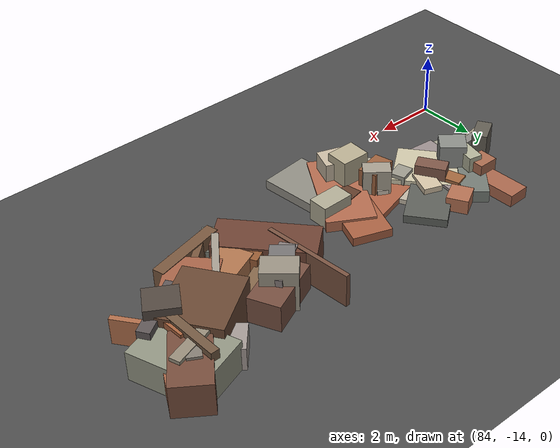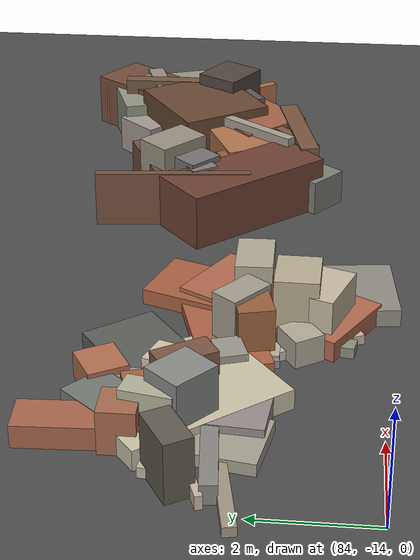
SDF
<sdf version="1.6">
 <world name="navitas_arena">
  <model name="ground_plane">
   <static>true</static>
   <link name="link">
    <collision name="collision">
     <geometry><plane><normal>0 0 1</normal><size>400 400</size></plane></geometry>
     <surface><friction><ode><mu>0.800</mu><mu2>0.800</mu2></ode></friction></surface>
    </collision>
    <visual name="visual">
     <cast_shadows>false</cast_shadows>
     <geometry><plane><normal>0 0 1</normal><size>400 400</size></plane></geometry>
     <material>
      <specular>0.04 0.04 0.04 1</specular>
      <script>
       <uri>file://media/materials/scripts/navitas_asphalt.material</uri>
       <name>Navitas/RealArenaAsphalt</name>
      </script>
     </material>
    </visual>
   </link>
  </model>
  <model name="blk_zor_2_0_0">
   <static>true</static>
   <pose>93.799 -10.117 0.000 0 0 0</pose>
   <link name="link">
    <collision name="col_0">
     <pose>-0.468 -1.114 0.536 0.000 0.000 2.289</pose>
     <geometry><box><size>3.077 1.252 1.072</size></box></geometry>
    </collision>
    <visual name="vis_0">
     <pose>-0.468 -1.114 0.536 0.000 0.000 2.289</pose>
     <geometry><box><size>3.077 1.252 1.072</size></box></geometry>
     <material>
      <ambient>0.40 0.24 0.18 1</ambient>
      <diffuse>0.43 0.26 0.20 1</diffuse>
      <specular>0.05 0.05 0.045 1</specular>
     </material>
    </visual>
    <collision name="col_1">
     <pose>0.269 0.342 0.671 0.000 0.000 2.404</pose>
     <geometry><box><size>1.095 0.757 1.342</size></box></geometry>
    </collision>
    <visual name="vis_1">
     <pose>0.269 0.342 0.671 0.000 0.000 2.404</pose>
     <geometry><box><size>1.095 0.757 1.342</size></box></geometry>
     <material>
      <ambient>0.56 0.53 0.47 1</ambient>
      <diffuse>0.60 0.57 0.51 1</diffuse>
      <specular>0.05 0.05 0.045 1</specular>
     </material>
    </visual>
    <collision name="col_2">
     <pose>-0.869 0.211 0.547 0.000 0.000 1.664</pose>
     <geometry><box><size>3.019 0.146 1.093</size></box></geometry>
    </collision>
    <visual name="vis_2">
     <pose>-0.869 0.211 0.547 0.000 0.000 1.664</pose>
     <geometry><box><size>3.019 0.146 1.093</size></box></geometry>
     <material>
      <ambient>0.44 0.30 0.23 1</ambient>
      <diffuse>0.47 0.32 0.25 1</diffuse>
      <specular>0.05 0.05 0.045 1</specular>
     </material>
    </visual>
    <collision name="col_3">
     <pose>-0.280 -0.207 0.594 0.000 0.000 2.407</pose>
     <geometry><box><size>0.731 0.542 1.188</size></box></geometry>
    </collision>
    <visual name="vis_3">
     <pose>-0.280 -0.207 0.594 0.000 0.000 2.407</pose>
     <geometry><box><size>0.731 0.542 1.188</size></box></geometry>
     <material>
      <ambient>0.43 0.42 0.41 1</ambient>
      <diffuse>0.46 0.45 0.45 1</diffuse>
      <specular>0.05 0.05 0.045 1</specular>
     </material>
    </visual>
    <collision name="col_4">
     <pose>0.378 0.428 0.440 0.000 0.000 3.579</pose>
     <geometry><box><size>1.924 1.025 0.880</size></box></geometry>
    </collision>
    <visual name="vis_4">
     <pose>0.378 0.428 0.440 0.000 0.000 3.579</pose>
     <geometry><box><size>1.924 1.025 0.880</size></box></geometry>
     <material>
      <ambient>0.43 0.29 0.23 1</ambient>
      <diffuse>0.46 0.31 0.25 1</diffuse>
      <specular>0.05 0.05 0.045 1</specular>
     </material>
    </visual>
    <collision name="col_5">
     <pose>0.684 -0.132 0.385 0.000 0.000 3.644</pose>
     <geometry><box><size>1.405 0.565 0.771</size></box></geometry>
    </collision>
    <visual name="vis_5">
     <pose>0.684 -0.132 0.385 0.000 0.000 3.644</pose>
     <geometry><box><size>1.405 0.565 0.771</size></box></geometry>
     <material>
      <ambient>0.48 0.37 0.27 1</ambient>
      <diffuse>0.52 0.40 0.29 1</diffuse>
      <specular>0.05 0.05 0.045 1</specular>
     </material>
    </visual>
   </link>
  </model>
  <model name="blk_zor_2_0_1">
   <static>true</static>
   <pose>94.803 -11.169 0.000 0 0 0</pose>
   <link name="link">
    <collision name="col_0">
     <pose>-1.032 1.095 0.557 0.000 0.000 0.596</pose>
     <geometry><box><size>1.615 0.543 1.113</size></box></geometry>
    </collision>
    <visual name="vis_0">
     <pose>-1.032 1.095 0.557 0.000 0.000 0.596</pose>
     <geometry><box><size>1.615 0.543 1.113</size></box></geometry>
     <material>
      <ambient>0.48 0.44 0.44 1</ambient>
      <diffuse>0.52 0.48 0.47 1</diffuse>
      <specular>0.05 0.05 0.045 1</specular>
     </material>
    </visual>
    <collision name="col_1">
     <pose>-0.584 -0.211 0.501 0.000 0.000 2.074</pose>
     <geometry><box><size>1.378 0.661 1.002</size></box></geometry>
    </collision>
    <visual name="vis_1">
     <pose>-0.584 -0.211 0.501 0.000 0.000 2.074</pose>
     <geometry><box><size>1.378 0.661 1.002</size></box></geometry>
     <material>
      <ambient>0.54 0.33 0.19 1</ambient>
      <diffuse>0.59 0.36 0.21 1</diffuse>
      <specular>0.05 0.05 0.045 1</specular>
     </material>
    </visual>
    <collision name="col_2">
     <pose>-0.577 -1.308 0.341 0.000 0.000 0.882</pose>
     <geometry><box><size>1.157 0.827 0.681</size></box></geometry>
    </collision>
    <visual name="vis_2">
     <pose>-0.577 -1.308 0.341 0.000 0.000 0.882</pose>
     <geometry><box><size>1.157 0.827 0.681</size></box></geometry>
     <material>
      <ambient>0.46 0.46 0.42 1</ambient>
      <diffuse>0.49 0.50 0.46 1</diffuse>
      <specular>0.05 0.05 0.045 1</specular>
     </material>
    </visual>
    <collision name="col_3">
     <pose>0.170 -1.043 0.533 0.000 0.000 0.721</pose>
     <geometry><box><size>1.220 0.209 1.067</size></box></geometry>
    </collision>
    <visual name="vis_3">
     <pose>0.170 -1.043 0.533 0.000 0.000 0.721</pose>
     <geometry><box><size>1.220 0.209 1.067</size></box></geometry>
     <material>
      <ambient>0.43 0.32 0.23 1</ambient>
      <diffuse>0.47 0.34 0.24 1</diffuse>
      <specular>0.05 0.05 0.045 1</specular>
     </material>
    </visual>
    <collision name="col_4">
     <pose>0.270 -0.131 0.622 0.000 0.000 0.939</pose>
     <geometry><box><size>2.072 0.206 1.244</size></box></geometry>
    </collision>
    <visual name="vis_4">
     <pose>0.270 -0.131 0.622 0.000 0.000 0.939</pose>
     <geometry><box><size>2.072 0.206 1.244</size></box></geometry>
     <material>
      <ambient>0.60 0.58 0.53 1</ambient>
      <diffuse>0.65 0.62 0.57 1</diffuse>
      <specular>0.05 0.05 0.045 1</specular>
     </material>
    </visual>
    <collision name="col_5">
     <pose>1.517 0.229 0.543 0.000 0.000 0.750</pose>
     <geometry><box><size>2.532 1.529 1.086</size></box></geometry>
    </collision>
    <visual name="vis_5">
     <pose>1.517 0.229 0.543 0.000 0.000 0.750</pose>
     <geometry><box><size>2.532 1.529 1.086</size></box></geometry>
     <material>
      <ambient>0.60 0.36 0.26 1</ambient>
      <diffuse>0.65 0.39 0.28 1</diffuse>
      <specular>0.05 0.05 0.045 1</specular>
     </material>
    </visual>
    <collision name="col_6">
     <pose>1.324 0.639 0.591 0.000 0.000 0.604</pose>
     <geometry><box><size>0.848 1.008 1.181</size></box></geometry>
    </collision>
    <visual name="vis_6">
     <pose>1.324 0.639 0.591 0.000 0.000 0.604</pose>
     <geometry><box><size>0.848 1.008 1.181</size></box></geometry>
     <material>
      <ambient>0.56 0.58 0.52 1</ambient>
      <diffuse>0.60 0.62 0.56 1</diffuse>
      <specular>0.05 0.05 0.045 1</specular>
     </material>
    </visual>
    <collision name="col_7">
     <pose>0.597 -1.075 0.554 0.000 0.000 0.241</pose>
     <geometry><box><size>2.337 0.378 1.107</size></box></geometry>
    </collision>
    <visual name="vis_7">
     <pose>0.597 -1.075 0.554 0.000 0.000 0.241</pose>
     <geometry><box><size>2.337 0.378 1.107</size></box></geometry>
     <material>
      <ambient>0.44 0.31 0.23 1</ambient>
      <diffuse>0.47 0.34 0.24 1</diffuse>
      <specular>0.05 0.05 0.045 1</specular>
     </material>
    </visual>
    <collision name="col_8">
     <pose>0.135 0.104 0.523 0.000 0.000 0.417</pose>
     <geometry><box><size>1.494 1.003 1.046</size></box></geometry>
    </collision>
    <visual name="vis_8">
     <pose>0.135 0.104 0.523 0.000 0.000 0.417</pose>
     <geometry><box><size>1.494 1.003 1.046</size></box></geometry>
     <material>
      <ambient>0.64 0.42 0.29 1</ambient>
      <diffuse>0.69 0.46 0.31 1</diffuse>
      <specular>0.05 0.05 0.045 1</specular>
     </material>
    </visual>
    <collision name="col_9">
     <pose>-0.138 -0.550 0.331 0.000 0.000 2.867</pose>
     <geometry><box><size>2.099 0.326 0.661</size></box></geometry>
    </collision>
    <visual name="vis_9">
     <pose>-0.138 -0.550 0.331 0.000 0.000 2.867</pose>
     <geometry><box><size>2.099 0.326 0.661</size></box></geometry>
     <material>
      <ambient>0.68 0.64 0.54 1</ambient>
      <diffuse>0.74 0.69 0.58 1</diffuse>
      <specular>0.05 0.05 0.045 1</specular>
     </material>
    </visual>
   </link>
  </model>
  <model name="blk_zor_2_0_4">
   <static>true</static>
   <pose>97.606 -9.692 0.000 0 0 0</pose>
   <link name="link">
    <collision name="col_0">
     <pose>0.037 0.411 0.490 0.000 0.000 1.905</pose>
     <geometry><box><size>2.376 1.783 0.980</size></box></geometry>
    </collision>
    <visual name="vis_0">
     <pose>0.037 0.411 0.490 0.000 0.000 1.905</pose>
     <geometry><box><size>2.376 1.783 0.980</size></box></geometry>
     <material>
      <ambient>0.52 0.54 0.47 1</ambient>
      <diffuse>0.57 0.58 0.51 1</diffuse>
      <specular>0.05 0.05 0.045 1</specular>
     </material>
    </visual>
    <collision name="col_1">
     <pose>-0.078 -0.066 0.378 0.000 0.000 3.196</pose>
     <geometry><box><size>2.040 1.108 0.756</size></box></geometry>
    </collision>
    <visual name="vis_1">
     <pose>-0.078 -0.066 0.378 0.000 0.000 3.196</pose>
     <geometry><box><size>2.040 1.108 0.756</size></box></geometry>
     <material>
      <ambient>0.48 0.35 0.29 1</ambient>
      <diffuse>0.52 0.38 0.31 1</diffuse>
      <specular>0.05 0.05 0.045 1</specular>
     </material>
    </visual>
    <collision name="col_2">
     <pose>-0.649 0.087 0.444 0.000 0.000 2.870</pose>
     <geometry><box><size>1.041 0.534 0.888</size></box></geometry>
    </collision>
    <visual name="vis_2">
     <pose>-0.649 0.087 0.444 0.000 0.000 2.870</pose>
     <geometry><box><size>1.041 0.534 0.888</size></box></geometry>
     <material>
      <ambient>0.57 0.55 0.50 1</ambient>
      <diffuse>0.62 0.60 0.54 1</diffuse>
      <specular>0.05 0.05 0.045 1</specular>
     </material>
    </visual>
    <collision name="col_3">
     <pose>-0.634 0.171 0.373 0.000 0.000 2.410</pose>
     <geometry><box><size>2.460 0.995 0.745</size></box></geometry>
    </collision>
    <visual name="vis_3">
     <pose>-0.634 0.171 0.373 0.000 0.000 2.410</pose>
     <geometry><box><size>2.460 0.995 0.745</size></box></geometry>
     <material>
      <ambient>0.60 0.56 0.53 1</ambient>
      <diffuse>0.64 0.60 0.58 1</diffuse>
      <specular>0.05 0.05 0.045 1</specular>
     </material>
    </visual>
    <collision name="col_4">
     <pose>-0.352 -0.179 0.600 0.000 0.000 1.622</pose>
     <geometry><box><size>0.797 0.708 1.200</size></box></geometry>
    </collision>
    <visual name="vis_4">
     <pose>-0.352 -0.179 0.600 0.000 0.000 1.622</pose>
     <geometry><box><size>0.797 0.708 1.200</size></box></geometry>
     <material>
      <ambient>0.61 0.36 0.22 1</ambient>
      <diffuse>0.66 0.39 0.24 1</diffuse>
      <specular>0.05 0.05 0.045 1</specular>
     </material>
    </visual>
    <collision name="col_5">
     <pose>-0.462 0.479 0.602 0.000 0.000 3.463</pose>
     <geometry><box><size>2.263 0.336 1.203</size></box></geometry>
    </collision>
    <visual name="vis_5">
     <pose>-0.462 0.479 0.602 0.000 0.000 3.463</pose>
     <geometry><box><size>2.263 0.336 1.203</size></box></geometry>
     <material>
      <ambient>0.54 0.51 0.45 1</ambient>
      <diffuse>0.59 0.55 0.48 1</diffuse>
      <specular>0.05 0.05 0.045 1</specular>
     </material>
    </visual>
    <collision name="col_6">
     <pose>-0.825 0.093 0.481 0.000 0.000 4.155</pose>
     <geometry><box><size>0.472 0.483 0.962</size></box></geometry>
    </collision>
    <visual name="vis_6">
     <pose>-0.825 0.093 0.481 0.000 0.000 4.155</pose>
     <geometry><box><size>0.472 0.483 0.962</size></box></geometry>
     <material>
      <ambient>0.40 0.31 0.19 1</ambient>
      <diffuse>0.43 0.33 0.20 1</diffuse>
      <specular>0.05 0.05 0.045 1</specular>
     </material>
    </visual>
    <collision name="col_7">
     <pose>-0.249 0.417 0.646 0.000 0.000 1.596</pose>
     <geometry><box><size>1.875 0.271 1.292</size></box></geometry>
    </collision>
    <visual name="vis_7">
     <pose>-0.249 0.417 0.646 0.000 0.000 1.596</pose>
     <geometry><box><size>1.875 0.271 1.292</size></box></geometry>
     <material>
      <ambient>0.42 0.32 0.24 1</ambient>
      <diffuse>0.45 0.35 0.26 1</diffuse>
      <specular>0.05 0.05 0.045 1</specular>
     </material>
    </visual>
    <collision name="col_8">
     <pose>0.191 0.924 0.544 0.000 0.000 4.086</pose>
     <geometry><box><size>1.998 1.173 1.087</size></box></geometry>
    </collision>
    <visual name="vis_8">
     <pose>0.191 0.924 0.544 0.000 0.000 4.086</pose>
     <geometry><box><size>1.998 1.173 1.087</size></box></geometry>
     <material>
      <ambient>0.43 0.28 0.22 1</ambient>
      <diffuse>0.46 0.30 0.23 1</diffuse>
      <specular>0.05 0.05 0.045 1</specular>
     </material>
    </visual>
    <collision name="col_9">
     <pose>0.055 0.879 0.588 0.000 0.000 4.186</pose>
     <geometry><box><size>0.456 0.423 1.175</size></box></geometry>
    </collision>
    <visual name="vis_9">
     <pose>0.055 0.879 0.588 0.000 0.000 4.186</pose>
     <geometry><box><size>0.456 0.423 1.175</size></box></geometry>
     <material>
      <ambient>0.48 0.45 0.41 1</ambient>
      <diffuse>0.52 0.49 0.45 1</diffuse>
      <specular>0.05 0.05 0.045 1</specular>
     </material>
    </visual>
   </link>
  </model>
  <model name="blk_zor_2_0_5">
   <static>true</static>
   <pose>97.488 -10.013 0.000 0 0 0</pose>
   <link name="link">
    <collision name="col_0">
     <pose>0.197 -0.576 0.442 0.000 0.000 2.201</pose>
     <geometry><box><size>2.398 0.172 0.885</size></box></geometry>
    </collision>
    <visual name="vis_0">
     <pose>0.197 -0.576 0.442 0.000 0.000 2.201</pose>
     <geometry><box><size>2.398 0.172 0.885</size></box></geometry>
     <material>
      <ambient>0.64 0.40 0.27 1</ambient>
      <diffuse>0.69 0.43 0.29 1</diffuse>
      <specular>0.05 0.05 0.045 1</specular>
     </material>
    </visual>
    <collision name="col_1">
     <pose>-0.164 -0.624 0.765 0.000 0.000 2.588</pose>
     <geometry><box><size>1.009 0.918 1.530</size></box></geometry>
    </collision>
    <visual name="vis_1">
     <pose>-0.164 -0.624 0.765 0.000 0.000 2.588</pose>
     <geometry><box><size>1.009 0.918 1.530</size></box></geometry>
     <material>
      <ambient>0.30 0.26 0.23 1</ambient>
      <diffuse>0.32 0.28 0.25 1</diffuse>
      <specular>0.05 0.05 0.045 1</specular>
     </material>
    </visual>
    <collision name="col_2">
     <pose>-0.101 -0.720 0.605 0.000 0.000 0.575</pose>
     <geometry><box><size>2.045 0.393 1.210</size></box></geometry>
    </collision>
    <visual name="vis_2">
     <pose>-0.101 -0.720 0.605 0.000 0.000 0.575</pose>
     <geometry><box><size>2.045 0.393 1.210</size></box></geometry>
     <material>
      <ambient>0.35 0.32 0.31 1</ambient>
      <diffuse>0.37 0.34 0.34 1</diffuse>
      <specular>0.05 0.05 0.045 1</specular>
     </material>
    </visual>
    <collision name="col_3">
     <pose>-1.262 -0.469 0.364 0.000 0.000 1.210</pose>
     <geometry><box><size>0.636 0.451 0.728</size></box></geometry>
    </collision>
    <visual name="vis_3">
     <pose>-1.262 -0.469 0.364 0.000 0.000 1.210</pose>
     <geometry><box><size>0.636 0.451 0.728</size></box></geometry>
     <material>
      <ambient>0.73 0.71 0.65 1</ambient>
      <diffuse>0.79 0.77 0.70 1</diffuse>
      <specular>0.05 0.05 0.045 1</specular>
     </material>
    </visual>
    <collision name="col_4">
     <pose>-1.136 -0.162 0.641 0.000 0.000 2.164</pose>
     <geometry><box><size>1.910 2.131 1.283</size></box></geometry>
    </collision>
    <visual name="vis_4">
     <pose>-1.136 -0.162 0.641 0.000 0.000 2.164</pose>
     <geometry><box><size>1.910 2.131 1.283</size></box></geometry>
     <material>
      <ambient>0.38 0.25 0.19 1</ambient>
      <diffuse>0.41 0.28 0.20 1</diffuse>
      <specular>0.05 0.05 0.045 1</specular>
     </material>
    </visual>
    <collision name="col_5">
     <pose>0.339 1.030 0.409 0.000 0.000 1.094</pose>
     <geometry><box><size>2.079 1.190 0.817</size></box></geometry>
    </collision>
    <visual name="vis_5">
     <pose>0.339 1.030 0.409 0.000 0.000 1.094</pose>
     <geometry><box><size>2.079 1.190 0.817</size></box></geometry>
     <material>
      <ambient>0.63 0.39 0.28 1</ambient>
      <diffuse>0.68 0.42 0.30 1</diffuse>
      <specular>0.05 0.05 0.045 1</specular>
     </material>
    </visual>
   </link>
  </model>
  <model name="deb_zor_30">
   <static>true</static>
   <pose>86.233 -10.562 0.000 0 0 0</pose>
   <link name="link">
    <collision name="col_0">
     <pose>-0.196 -0.338 0.579 0.000 0.000 0.845</pose>
     <geometry><box><size>0.735 0.851 1.158</size></box></geometry>
    </collision>
    <visual name="vis_0">
     <pose>-0.196 -0.338 0.579 0.000 0.000 0.845</pose>
     <geometry><box><size>0.735 0.851 1.158</size></box></geometry>
     <material>
      <ambient>0.50 0.51 0.49 1</ambient>
      <diffuse>0.54 0.55 0.53 1</diffuse>
      <specular>0.05 0.05 0.045 1</specular>
     </material>
    </visual>
    <collision name="col_1">
     <pose>-0.432 0.116 0.462 0.000 0.000 2.938</pose>
     <geometry><box><size>0.457 0.869 0.923</size></box></geometry>
    </collision>
    <visual name="vis_1">
     <pose>-0.432 0.116 0.462 0.000 0.000 2.938</pose>
     <geometry><box><size>0.457 0.869 0.923</size></box></geometry>
     <material>
      <ambient>0.65 0.65 0.56 1</ambient>
      <diffuse>0.70 0.70 0.60 1</diffuse>
      <specular>0.05 0.05 0.045 1</specular>
     </material>
    </visual>
    <collision name="col_2">
     <pose>0.418 -0.065 0.133 0.000 0.000 0.895</pose>
     <geometry><box><size>2.037 1.677 0.265</size></box></geometry>
    </collision>
    <visual name="vis_2">
     <pose>0.418 -0.065 0.133 0.000 0.000 0.895</pose>
     <geometry><box><size>2.037 1.677 0.265</size></box></geometry>
     <material>
      <ambient>0.42 0.29 0.21 1</ambient>
      <diffuse>0.46 0.31 0.23 1</diffuse>
      <specular>0.05 0.05 0.045 1</specular>
     </material>
    </visual>
    <collision name="col_3">
     <pose>-0.437 -0.168 0.111 0.000 0.000 1.394</pose>
     <geometry><box><size>3.023 1.152 0.221</size></box></geometry>
    </collision>
    <visual name="vis_3">
     <pose>-0.437 -0.168 0.111 0.000 0.000 1.394</pose>
     <geometry><box><size>3.023 1.152 0.221</size></box></geometry>
     <material>
      <ambient>0.60 0.58 0.53 1</ambient>
      <diffuse>0.65 0.63 0.57 1</diffuse>
      <specular>0.05 0.05 0.045 1</specular>
     </material>
    </visual>
   </link>
  </model>
  <model name="deb_zor_144">
   <static>true</static>
   <pose>89.411 -12.268 0.000 0 0 0</pose>
   <link name="link">
    <collision name="col_0">
     <pose>-0.626 -0.164 0.178 0.000 0.000 1.699</pose>
     <geometry><box><size>0.739 0.729 0.357</size></box></geometry>
    </collision>
    <visual name="vis_0">
     <pose>-0.626 -0.164 0.178 0.000 0.000 1.699</pose>
     <geometry><box><size>0.739 0.729 0.357</size></box></geometry>
     <material>
      <ambient>0.35 0.33 0.30 1</ambient>
      <diffuse>0.38 0.35 0.32 1</diffuse>
      <specular>0.05 0.05 0.045 1</specular>
     </material>
    </visual>
    <collision name="col_1">
     <pose>0.682 -0.918 0.157 0.000 0.000 1.679</pose>
     <geometry><box><size>2.049 1.637 0.314</size></box></geometry>
    </collision>
    <visual name="vis_1">
     <pose>0.682 -0.918 0.157 0.000 0.000 1.679</pose>
     <geometry><box><size>2.049 1.637 0.314</size></box></geometry>
     <material>
      <ambient>0.52 0.51 0.48 1</ambient>
      <diffuse>0.56 0.55 0.51 1</diffuse>
      <specular>0.05 0.05 0.045 1</specular>
     </material>
    </visual>
    <collision name="col_2">
     <pose>0.567 -0.917 0.067 0.000 0.000 0.106</pose>
     <geometry><box><size>1.032 0.131 0.133</size></box></geometry>
    </collision>
    <visual name="vis_2">
     <pose>0.567 -0.917 0.067 0.000 0.000 0.106</pose>
     <geometry><box><size>1.032 0.131 0.133</size></box></geometry>
     <material>
      <ambient>0.46 0.31 0.25 1</ambient>
      <diffuse>0.49 0.34 0.27 1</diffuse>
      <specular>0.05 0.05 0.045 1</specular>
     </material>
    </visual>
    <collision name="col_3">
     <pose>0.207 0.083 0.183 0.000 0.000 1.041</pose>
     <geometry><box><size>3.184 1.561 0.367</size></box></geometry>
    </collision>
    <visual name="vis_3">
     <pose>0.207 0.083 0.183 0.000 0.000 1.041</pose>
     <geometry><box><size>3.184 1.561 0.367</size></box></geometry>
     <material>
      <ambient>0.65 0.39 0.29 1</ambient>
      <diffuse>0.70 0.42 0.31 1</diffuse>
      <specular>0.05 0.05 0.045 1</specular>
     </material>
    </visual>
    <collision name="col_4">
     <pose>-0.896 -0.748 0.095 0.000 0.000 1.389</pose>
     <geometry><box><size>1.038 0.305 0.191</size></box></geometry>
    </collision>
    <visual name="vis_4">
     <pose>-0.896 -0.748 0.095 0.000 0.000 1.389</pose>
     <geometry><box><size>1.038 0.305 0.191</size></box></geometry>
     <material>
      <ambient>0.51 0.52 0.45 1</ambient>
      <diffuse>0.55 0.56 0.49 1</diffuse>
      <specular>0.05 0.05 0.045 1</specular>
     </material>
    </visual>
    <collision name="col_5">
     <pose>-0.482 0.292 0.133 0.000 0.000 1.499</pose>
     <geometry><box><size>0.506 0.259 0.266</size></box></geometry>
    </collision>
    <visual name="vis_5">
     <pose>-0.482 0.292 0.133 0.000 0.000 1.499</pose>
     <geometry><box><size>0.506 0.259 0.266</size></box></geometry>
     <material>
      <ambient>0.40 0.24 0.20 1</ambient>
      <diffuse>0.44 0.26 0.22 1</diffuse>
      <specular>0.05 0.05 0.045 1</specular>
     </material>
    </visual>
    <collision name="col_6">
     <pose>0.117 0.821 0.104 0.000 0.000 2.157</pose>
     <geometry><box><size>0.427 0.382 0.208</size></box></geometry>
    </collision>
    <visual name="vis_6">
     <pose>0.117 0.821 0.104 0.000 0.000 2.157</pose>
     <geometry><box><size>0.427 0.382 0.208</size></box></geometry>
     <material>
      <ambient>0.54 0.50 0.50 1</ambient>
      <diffuse>0.58 0.54 0.54 1</diffuse>
      <specular>0.05 0.05 0.045 1</specular>
     </material>
    </visual>
   </link>
  </model>
  <model name="deb_zor_147">
   <static>true</static>
   <pose>88.762 -12.161 0.000 0 0 0</pose>
   <link name="link">
    <collision name="col_0">
     <pose>-0.474 -0.448 0.250 0.000 0.000 3.718</pose>
     <geometry><box><size>0.612 0.552 0.500</size></box></geometry>
    </collision>
    <visual name="vis_0">
     <pose>-0.474 -0.448 0.250 0.000 0.000 3.718</pose>
     <geometry><box><size>0.612 0.552 0.500</size></box></geometry>
     <material>
      <ambient>0.65 0.62 0.56 1</ambient>
      <diffuse>0.70 0.67 0.60 1</diffuse>
      <specular>0.05 0.05 0.045 1</specular>
     </material>
    </visual>
    <collision name="col_1">
     <pose>-0.684 0.099 0.074 0.000 0.000 3.334</pose>
     <geometry><box><size>0.488 0.370 0.148</size></box></geometry>
    </collision>
    <visual name="vis_1">
     <pose>-0.684 0.099 0.074 0.000 0.000 3.334</pose>
     <geometry><box><size>0.488 0.370 0.148</size></box></geometry>
     <material>
      <ambient>0.51 0.51 0.51 1</ambient>
      <diffuse>0.55 0.55 0.55 1</diffuse>
      <specular>0.05 0.05 0.045 1</specular>
     </material>
    </visual>
    <collision name="col_2">
     <pose>0.418 0.221 0.090 0.000 0.000 3.129</pose>
     <geometry><box><size>2.422 0.701 0.180</size></box></geometry>
    </collision>
    <visual name="vis_2">
     <pose>0.418 0.221 0.090 0.000 0.000 3.129</pose>
     <geometry><box><size>2.422 0.701 0.180</size></box></geometry>
     <material>
      <ambient>0.68 0.64 0.56 1</ambient>
      <diffuse>0.74 0.69 0.60 1</diffuse>
      <specular>0.05 0.05 0.045 1</specular>
     </material>
    </visual>
    <collision name="col_3">
     <pose>0.255 -0.359 0.621 0.000 0.000 1.550</pose>
     <geometry><box><size>0.765 0.941 1.242</size></box></geometry>
    </collision>
    <visual name="vis_3">
     <pose>0.255 -0.359 0.621 0.000 0.000 1.550</pose>
     <geometry><box><size>0.765 0.941 1.242</size></box></geometry>
     <material>
      <ambient>0.66 0.63 0.53 1</ambient>
      <diffuse>0.72 0.68 0.57 1</diffuse>
      <specular>0.05 0.05 0.045 1</specular>
     </material>
    </visual>
    <collision name="col_4">
     <pose>0.305 -0.765 0.484 0.000 0.000 2.798</pose>
     <geometry><box><size>1.125 0.805 0.968</size></box></geometry>
    </collision>
    <visual name="vis_4">
     <pose>0.305 -0.765 0.484 0.000 0.000 2.798</pose>
     <geometry><box><size>1.125 0.805 0.968</size></box></geometry>
     <material>
      <ambient>0.73 0.68 0.59 1</ambient>
      <diffuse>0.79 0.73 0.64 1</diffuse>
      <specular>0.05 0.05 0.045 1</specular>
     </material>
    </visual>
    <collision name="col_5">
     <pose>-0.231 0.379 0.473 0.000 0.000 1.812</pose>
     <geometry><box><size>0.620 0.977 0.946</size></box></geometry>
    </collision>
    <visual name="vis_5">
     <pose>-0.231 0.379 0.473 0.000 0.000 1.812</pose>
     <geometry><box><size>0.620 0.977 0.946</size></box></geometry>
     <material>
      <ambient>0.57 0.35 0.22 1</ambient>
      <diffuse>0.61 0.38 0.24 1</diffuse>
      <specular>0.05 0.05 0.045 1</specular>
     </material>
    </visual>
   </link>
  </model>
  <model name="deb_zor_158">
   <static>true</static>
   <pose>90.528 -11.739 0.000 0 0 0</pose>
   <link name="link">
    <collision name="col_0">
     <pose>-0.056 0.040 0.368 0.000 0.000 0.016</pose>
     <geometry><box><size>1.077 0.672 0.736</size></box></geometry>
    </collision>
    <visual name="vis_0">
     <pose>-0.056 0.040 0.368 0.000 0.000 0.016</pose>
     <geometry><box><size>1.077 0.672 0.736</size></box></geometry>
     <material>
      <ambient>0.64 0.62 0.54 1</ambient>
      <diffuse>0.69 0.67 0.58 1</diffuse>
      <specular>0.05 0.05 0.045 1</specular>
     </material>
    </visual>
    <collision name="col_1">
     <pose>-0.695 0.336 0.145 0.000 0.000 1.225</pose>
     <geometry><box><size>3.042 1.277 0.289</size></box></geometry>
    </collision>
    <visual name="vis_1">
     <pose>-0.695 0.336 0.145 0.000 0.000 1.225</pose>
     <geometry><box><size>3.042 1.277 0.289</size></box></geometry>
     <material>
      <ambient>0.61 0.35 0.24 1</ambient>
      <diffuse>0.66 0.38 0.26 1</diffuse>
      <specular>0.05 0.05 0.045 1</specular>
     </material>
    </visual>
    <collision name="col_2">
     <pose>-0.261 0.527 0.100 0.000 0.000 0.132</pose>
     <geometry><box><size>0.230 0.334 0.201</size></box></geometry>
    </collision>
    <visual name="vis_2">
     <pose>-0.261 0.527 0.100 0.000 0.000 0.132</pose>
     <geometry><box><size>0.230 0.334 0.201</size></box></geometry>
     <material>
      <ambient>0.31 0.29 0.27 1</ambient>
      <diffuse>0.34 0.32 0.30 1</diffuse>
      <specular>0.05 0.05 0.045 1</specular>
     </material>
    </visual>
    <collision name="col_3">
     <pose>-0.273 0.708 0.120 0.000 0.000 1.101</pose>
     <geometry><box><size>1.231 0.204 0.239</size></box></geometry>
    </collision>
    <visual name="vis_3">
     <pose>-0.273 0.708 0.120 0.000 0.000 1.101</pose>
     <geometry><box><size>1.231 0.204 0.239</size></box></geometry>
     <material>
      <ambient>0.51 0.51 0.47 1</ambient>
      <diffuse>0.56 0.55 0.51 1</diffuse>
      <specular>0.05 0.05 0.045 1</specular>
     </material>
    </visual>
    <collision name="col_4">
     <pose>-0.671 -0.078 0.198 0.000 0.000 0.200</pose>
     <geometry><box><size>1.060 0.589 0.396</size></box></geometry>
    </collision>
    <visual name="vis_4">
     <pose>-0.671 -0.078 0.198 0.000 0.000 0.200</pose>
     <geometry><box><size>1.060 0.589 0.396</size></box></geometry>
     <material>
      <ambient>0.35 0.23 0.16 1</ambient>
      <diffuse>0.38 0.24 0.17 1</diffuse>
      <specular>0.05 0.05 0.045 1</specular>
     </material>
    </visual>
   </link>
  </model>
  <model name="deb_zor_170">
   <static>true</static>
   <pose>89.299 -11.931 0.000 0 0 0</pose>
   <link name="link">
    <collision name="col_0">
     <pose>-0.627 0.614 0.173 0.000 0.000 2.618</pose>
     <geometry><box><size>0.350 0.173 0.346</size></box></geometry>
    </collision>
    <visual name="vis_0">
     <pose>-0.627 0.614 0.173 0.000 0.000 2.618</pose>
     <geometry><box><size>0.350 0.173 0.346</size></box></geometry>
     <material>
      <ambient>0.75 0.71 0.65 1</ambient>
      <diffuse>0.81 0.76 0.70 1</diffuse>
      <specular>0.05 0.05 0.045 1</specular>
     </material>
    </visual>
    <collision name="col_1">
     <pose>-0.310 -0.655 0.110 0.000 0.000 3.826</pose>
     <geometry><box><size>1.654 0.210 0.219</size></box></geometry>
    </collision>
    <visual name="vis_1">
     <pose>-0.310 -0.655 0.110 0.000 0.000 3.826</pose>
     <geometry><box><size>1.654 0.210 0.219</size></box></geometry>
     <material>
      <ambient>0.59 0.36 0.26 1</ambient>
      <diffuse>0.64 0.39 0.28 1</diffuse>
      <specular>0.05 0.05 0.045 1</specular>
     </material>
    </visual>
    <collision name="col_2">
     <pose>-0.759 -0.139 0.086 0.000 0.000 2.022</pose>
     <geometry><box><size>3.085 0.991 0.173</size></box></geometry>
    </collision>
    <visual name="vis_2">
     <pose>-0.759 -0.139 0.086 0.000 0.000 2.022</pose>
     <geometry><box><size>3.085 0.991 0.173</size></box></geometry>
     <material>
      <ambient>0.69 0.66 0.59 1</ambient>
      <diffuse>0.75 0.71 0.64 1</diffuse>
      <specular>0.05 0.05 0.045 1</specular>
     </material>
    </visual>
    <collision name="col_3">
     <pose>-0.251 0.712 0.097 0.000 0.000 3.425</pose>
     <geometry><box><size>3.082 1.171 0.195</size></box></geometry>
    </collision>
    <visual name="vis_3">
     <pose>-0.251 0.712 0.097 0.000 0.000 3.425</pose>
     <geometry><box><size>3.082 1.171 0.195</size></box></geometry>
     <material>
      <ambient>0.63 0.36 0.25 1</ambient>
      <diffuse>0.68 0.39 0.27 1</diffuse>
      <specular>0.05 0.05 0.045 1</specular>
     </material>
    </visual>
    <collision name="col_4">
     <pose>-0.627 0.335 0.514 0.000 0.000 4.031</pose>
     <geometry><box><size>0.531 0.875 1.029</size></box></geometry>
    </collision>
    <visual name="vis_4">
     <pose>-0.627 0.335 0.514 0.000 0.000 4.031</pose>
     <geometry><box><size>0.531 0.875 1.029</size></box></geometry>
     <material>
      <ambient>0.61 0.57 0.52 1</ambient>
      <diffuse>0.65 0.62 0.56 1</diffuse>
      <specular>0.05 0.05 0.045 1</specular>
     </material>
    </visual>
   </link>
  </model>
  <model name="deb_zor_219">
   <static>true</static>
   <pose>85.707 -10.727 0.000 0 0 0</pose>
   <link name="link">
    <collision name="col_0">
     <pose>0.599 -0.395 0.115 0.000 0.000 1.134</pose>
     <geometry><box><size>0.318 0.241 0.231</size></box></geometry>
    </collision>
    <visual name="vis_0">
     <pose>0.599 -0.395 0.115 0.000 0.000 1.134</pose>
     <geometry><box><size>0.318 0.241 0.231</size></box></geometry>
     <material>
      <ambient>0.44 0.42 0.41 1</ambient>
      <diffuse>0.47 0.45 0.44 1</diffuse>
      <specular>0.05 0.05 0.045 1</specular>
     </material>
    </visual>
    <collision name="col_1">
     <pose>0.820 -0.165 0.180 0.000 0.000 2.243</pose>
     <geometry><box><size>2.924 1.758 0.361</size></box></geometry>
    </collision>
    <visual name="vis_1">
     <pose>0.820 -0.165 0.180 0.000 0.000 2.243</pose>
     <geometry><box><size>2.924 1.758 0.361</size></box></geometry>
     <material>
      <ambient>0.74 0.72 0.61 1</ambient>
      <diffuse>0.80 0.77 0.66 1</diffuse>
      <specular>0.05 0.05 0.045 1</specular>
     </material>
    </visual>
    <collision name="col_2">
     <pose>-1.013 -0.122 0.518 0.000 0.000 0.533</pose>
     <geometry><box><size>0.872 0.487 1.037</size></box></geometry>
    </collision>
    <visual name="vis_2">
     <pose>-1.013 -0.122 0.518 0.000 0.000 0.533</pose>
     <geometry><box><size>0.872 0.487 1.037</size></box></geometry>
     <material>
      <ambient>0.35 0.34 0.30 1</ambient>
      <diffuse>0.38 0.36 0.32 1</diffuse>
      <specular>0.05 0.05 0.045 1</specular>
     </material>
    </visual>
    <collision name="col_3">
     <pose>0.463 0.888 0.203 0.000 0.000 0.853</pose>
     <geometry><box><size>1.576 0.864 0.405</size></box></geometry>
    </collision>
    <visual name="vis_3">
     <pose>0.463 0.888 0.203 0.000 0.000 0.853</pose>
     <geometry><box><size>1.576 0.864 0.405</size></box></geometry>
     <material>
      <ambient>0.42 0.45 0.41 1</ambient>
      <diffuse>0.45 0.48 0.45 1</diffuse>
      <specular>0.05 0.05 0.045 1</specular>
     </material>
    </visual>
    <collision name="col_4">
     <pose>-0.793 -0.356 0.122 0.000 0.000 0.347</pose>
     <geometry><box><size>1.633 0.123 0.243</size></box></geometry>
    </collision>
    <visual name="vis_4">
     <pose>-0.793 -0.356 0.122 0.000 0.000 0.347</pose>
     <geometry><box><size>1.633 0.123 0.243</size></box></geometry>
     <material>
      <ambient>0.73 0.66 0.60 1</ambient>
      <diffuse>0.79 0.71 0.65 1</diffuse>
      <specular>0.05 0.05 0.045 1</specular>
     </material>
    </visual>
   </link>
  </model>
  <model name="deb_zor_237">
   <static>true</static>
   <pose>84.358 -11.186 0.000 0 0 0</pose>
   <link name="link">
    <collision name="col_0">
     <pose>0.285 -0.460 0.086 0.000 0.000 0.187</pose>
     <geometry><box><size>2.111 0.217 0.171</size></box></geometry>
    </collision>
    <visual name="vis_0">
     <pose>0.285 -0.460 0.086 0.000 0.000 0.187</pose>
     <geometry><box><size>2.111 0.217 0.171</size></box></geometry>
     <material>
      <ambient>0.58 0.55 0.47 1</ambient>
      <diffuse>0.63 0.59 0.51 1</diffuse>
      <specular>0.05 0.05 0.045 1</specular>
     </material>
    </visual>
    <collision name="col_1">
     <pose>0.626 0.638 0.093 0.000 0.000 1.419</pose>
     <geometry><box><size>0.279 0.426 0.186</size></box></geometry>
    </collision>
    <visual name="vis_1">
     <pose>0.626 0.638 0.093 0.000 0.000 1.419</pose>
     <geometry><box><size>0.279 0.426 0.186</size></box></geometry>
     <material>
      <ambient>0.68 0.67 0.59 1</ambient>
      <diffuse>0.74 0.72 0.64 1</diffuse>
      <specular>0.05 0.05 0.045 1</specular>
     </material>
    </visual>
    <collision name="col_2">
     <pose>0.432 0.244 0.133 0.000 0.000 1.377</pose>
     <geometry><box><size>0.203 0.399 0.265</size></box></geometry>
    </collision>
    <visual name="vis_2">
     <pose>0.432 0.244 0.133 0.000 0.000 1.377</pose>
     <geometry><box><size>0.203 0.399 0.265</size></box></geometry>
     <material>
      <ambient>0.42 0.31 0.25 1</ambient>
      <diffuse>0.46 0.34 0.27 1</diffuse>
      <specular>0.05 0.05 0.045 1</specular>
     </material>
    </visual>
    <collision name="col_3">
     <pose>0.679 -0.231 0.171 0.000 0.000 0.086</pose>
     <geometry><box><size>1.547 0.279 0.343</size></box></geometry>
    </collision>
    <visual name="vis_3">
     <pose>0.679 -0.231 0.171 0.000 0.000 0.086</pose>
     <geometry><box><size>1.547 0.279 0.343</size></box></geometry>
     <material>
      <ambient>0.50 0.49 0.47 1</ambient>
      <diffuse>0.54 0.53 0.51 1</diffuse>
      <specular>0.05 0.05 0.045 1</specular>
     </material>
    </visual>
   </link>
  </model>
  <model name="deb_zor_256">
   <static>true</static>
   <pose>87.125 -10.857 0.000 0 0 0</pose>
   <link name="link">
    <collision name="col_0">
     <pose>-0.721 -0.052 0.180 0.000 0.000 1.480</pose>
     <geometry><box><size>2.690 1.312 0.359</size></box></geometry>
    </collision>
    <visual name="vis_0">
     <pose>-0.721 -0.052 0.180 0.000 0.000 1.480</pose>
     <geometry><box><size>2.690 1.312 0.359</size></box></geometry>
     <material>
      <ambient>0.55 0.51 0.51 1</ambient>
      <diffuse>0.60 0.55 0.55 1</diffuse>
      <specular>0.05 0.05 0.045 1</specular>
     </material>
    </visual>
    <collision name="col_1">
     <pose>0.274 0.227 0.232 0.000 0.000 2.777</pose>
     <geometry><box><size>0.612 0.902 0.465</size></box></geometry>
    </collision>
    <visual name="vis_1">
     <pose>0.274 0.227 0.232 0.000 0.000 2.777</pose>
     <geometry><box><size>0.612 0.902 0.465</size></box></geometry>
     <material>
      <ambient>0.76 0.70 0.60 1</ambient>
      <diffuse>0.83 0.76 0.65 1</diffuse>
      <specular>0.05 0.05 0.045 1</specular>
     </material>
    </visual>
    <collision name="col_2">
     <pose>0.138 0.435 0.117 0.000 0.000 1.379</pose>
     <geometry><box><size>0.462 0.251 0.233</size></box></geometry>
    </collision>
    <visual name="vis_2">
     <pose>0.138 0.435 0.117 0.000 0.000 1.379</pose>
     <geometry><box><size>0.462 0.251 0.233</size></box></geometry>
     <material>
      <ambient>0.34 0.32 0.30 1</ambient>
      <diffuse>0.37 0.35 0.33 1</diffuse>
      <specular>0.05 0.05 0.045 1</specular>
     </material>
    </visual>
    <collision name="col_3">
     <pose>0.571 -0.619 0.246 0.000 0.000 1.882</pose>
     <geometry><box><size>0.498 0.590 0.492</size></box></geometry>
    </collision>
    <visual name="vis_3">
     <pose>0.571 -0.619 0.246 0.000 0.000 1.882</pose>
     <geometry><box><size>0.498 0.590 0.492</size></box></geometry>
     <material>
      <ambient>0.56 0.56 0.51 1</ambient>
      <diffuse>0.61 0.60 0.55 1</diffuse>
      <specular>0.05 0.05 0.045 1</specular>
     </material>
    </visual>
    <collision name="col_4">
     <pose>-0.384 0.500 0.239 0.000 0.000 0.298</pose>
     <geometry><box><size>0.483 0.956 0.477</size></box></geometry>
    </collision>
    <visual name="vis_4">
     <pose>-0.384 0.500 0.239 0.000 0.000 0.298</pose>
     <geometry><box><size>0.483 0.956 0.477</size></box></geometry>
     <material>
      <ambient>0.59 0.37 0.22 1</ambient>
      <diffuse>0.63 0.40 0.24 1</diffuse>
      <specular>0.05 0.05 0.045 1</specular>
     </material>
    </visual>
   </link>
  </model>
  <model name="deb_zor_370">
   <static>true</static>
   <pose>86.611 -9.661 0.000 0 0 0</pose>
   <link name="link">
    <collision name="col_0">
     <pose>-0.185 -0.970 0.145 0.000 0.000 -0.516</pose>
     <geometry><box><size>2.305 0.149 0.289</size></box></geometry>
    </collision>
    <visual name="vis_0">
     <pose>-0.185 -0.970 0.145 0.000 0.000 -0.516</pose>
     <geometry><box><size>2.305 0.149 0.289</size></box></geometry>
     <material>
      <ambient>0.52 0.50 0.49 1</ambient>
      <diffuse>0.56 0.54 0.53 1</diffuse>
      <specular>0.05 0.05 0.045 1</specular>
     </material>
    </visual>
    <collision name="col_1">
     <pose>1.035 -0.579 0.136 0.000 0.000 0.647</pose>
     <geometry><box><size>2.510 1.340 0.272</size></box></geometry>
    </collision>
    <visual name="vis_1">
     <pose>1.035 -0.579 0.136 0.000 0.000 0.647</pose>
     <geometry><box><size>2.510 1.340 0.272</size></box></geometry>
     <material>
      <ambient>0.34 0.34 0.32 1</ambient>
      <diffuse>0.36 0.37 0.35 1</diffuse>
      <specular>0.05 0.05 0.045 1</specular>
     </material>
    </visual>
    <collision name="col_2">
     <pose>0.410 -1.165 0.397 0.000 0.000 0.549</pose>
     <geometry><box><size>0.504 0.990 0.795</size></box></geometry>
    </collision>
    <visual name="vis_2">
     <pose>0.410 -1.165 0.397 0.000 0.000 0.549</pose>
     <geometry><box><size>0.504 0.990 0.795</size></box></geometry>
     <material>
      <ambient>0.46 0.31 0.26 1</ambient>
      <diffuse>0.49 0.34 0.28 1</diffuse>
      <specular>0.05 0.05 0.045 1</specular>
     </material>
    </visual>
    <collision name="col_3">
     <pose>0.556 0.198 0.242 0.000 0.000 0.514</pose>
     <geometry><box><size>0.750 0.704 0.483</size></box></geometry>
    </collision>
    <visual name="vis_3">
     <pose>0.556 0.198 0.242 0.000 0.000 0.514</pose>
     <geometry><box><size>0.750 0.704 0.483</size></box></geometry>
     <material>
      <ambient>0.65 0.41 0.30 1</ambient>
      <diffuse>0.70 0.44 0.32 1</diffuse>
      <specular>0.05 0.05 0.045 1</specular>
     </material>
    </visual>
    <collision name="col_4">
     <pose>-0.682 -0.963 0.154 0.000 0.000 1.494</pose>
     <geometry><box><size>0.292 0.328 0.309</size></box></geometry>
    </collision>
    <visual name="vis_4">
     <pose>-0.682 -0.963 0.154 0.000 0.000 1.494</pose>
     <geometry><box><size>0.292 0.328 0.309</size></box></geometry>
     <material>
      <ambient>0.39 0.24 0.17 1</ambient>
      <diffuse>0.42 0.25 0.18 1</diffuse>
      <specular>0.05 0.05 0.045 1</specular>
     </material>
    </visual>
    <collision name="col_5">
     <pose>-0.880 0.284 0.199 0.000 0.000 1.609</pose>
     <geometry><box><size>2.040 0.719 0.399</size></box></geometry>
    </collision>
    <visual name="vis_5">
     <pose>-0.880 0.284 0.199 0.000 0.000 1.609</pose>
     <geometry><box><size>2.040 0.719 0.399</size></box></geometry>
     <material>
      <ambient>0.61 0.37 0.28 1</ambient>
      <diffuse>0.66 0.40 0.30 1</diffuse>
      <specular>0.05 0.05 0.045 1</specular>
     </material>
    </visual>
    <collision name="col_6">
     <pose>-0.983 -0.345 0.381 0.000 0.000 1.572</pose>
     <geometry><box><size>0.614 0.676 0.762</size></box></geometry>
    </collision>
    <visual name="vis_6">
     <pose>-0.983 -0.345 0.381 0.000 0.000 1.572</pose>
     <geometry><box><size>0.614 0.676 0.762</size></box></geometry>
     <material>
      <ambient>0.61 0.39 0.28 1</ambient>
      <diffuse>0.66 0.42 0.31 1</diffuse>
      <specular>0.05 0.05 0.045 1</specular>
     </material>
    </visual>
   </link>
  </model>
 </world>
</sdf>
